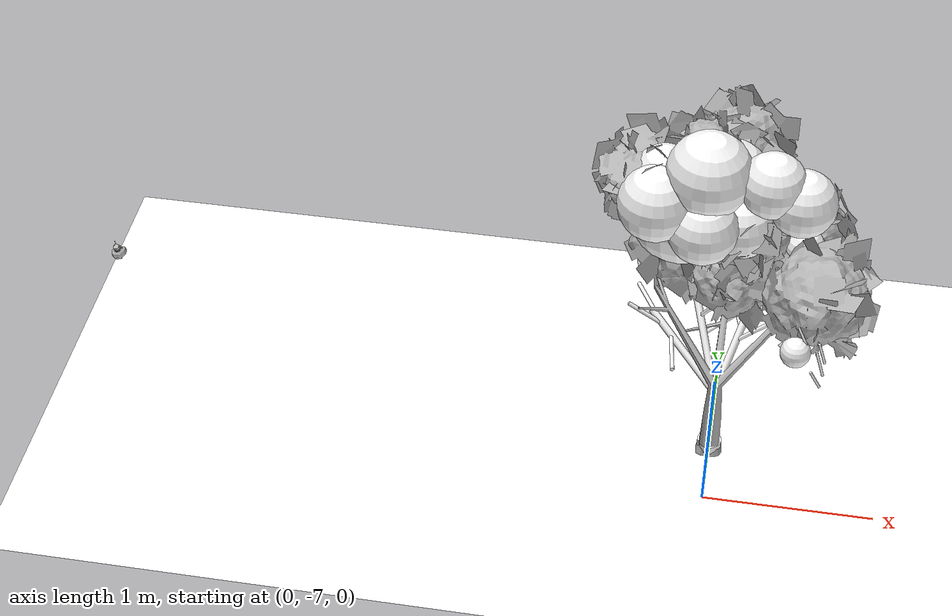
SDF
<sdf version="1.11">
 <world name="peach_orchard">
  <model name="ground">
   <static>true</static>
   <link name="link">
    <visual name="soil">
     <geometry><plane><normal>0 0 1</normal><size>32 22</size></plane></geometry>
     <material>
      <ambient>1 1 1 1</ambient>
      <diffuse>1 1 1 1</diffuse>
      <specular>0.1 0.1 0.1 1</specular>
      <pbr>
       <metal>
        <albedo_map>textures/soil_albedo.png</albedo_map>
        <normal_map type="tangent">textures/soil_normal.png</normal_map>
        <roughness>0.95</roughness>
        <metalness>0</metalness>
       </metal>
      </pbr>
     </material>
    </visual>
    <collision name="c_soil">
     <geometry><plane><normal>0 0 1</normal><size>32 22</size></plane></geometry>
    </collision>
   </link>
  </model>
  <model name="tree_r2_t0">
   <pose>0 -6.6 0 0 0 0</pose>
   <static>true</static>
   <link name="link">
    <visual name="tree_mesh">
     <pose>0 0 0 0 0 -0.0195744</pose>
     <geometry>
      <mesh><uri>model://peach_sim/meshes/peach_tree_a.glb</uri><scale>0.989964 0.989964 0.989964</scale></mesh>
     </geometry>
    </visual>
    <visual name="trunk_0">
     <pose>0 0 0.145284 0 0 0</pose>
     <geometry><cylinder><radius>0.049724</radius><length>0.290567</length></cylinder></geometry>
     <material>
      <ambient>1 1 1 1</ambient>
      <diffuse>1 1 1 1</diffuse>
      <specular>0.1 0.1 0.1 1</specular>
      <pbr>
       <metal>
        <albedo_map>textures/bark_albedo.png</albedo_map>
        <normal_map type="tangent">textures/bark_normal.png</normal_map>
        <roughness>0.9</roughness>
        <metalness>0</metalness>
       </metal>
      </pbr>
     </material>
    </visual>
    <collision name="c_trunk_0">
     <pose>0 0 0.145284 0 0 0</pose>
     <geometry><cylinder><radius>0.049724</radius><length>0.290567</length></cylinder></geometry>
    </collision>
    <visual name="trunk_1">
     <pose>0 0 0.409436 0 0 0</pose>
     <geometry><cylinder><radius>0.0358013</radius><length>0.237737</length></cylinder></geometry>
     <material>
      <ambient>1 1 1 1</ambient>
      <diffuse>1 1 1 1</diffuse>
      <specular>0.1 0.1 0.1 1</specular>
      <pbr>
       <metal>
        <albedo_map>textures/bark_albedo.png</albedo_map>
        <normal_map type="tangent">textures/bark_normal.png</normal_map>
        <roughness>0.9</roughness>
        <metalness>0</metalness>
       </metal>
      </pbr>
     </material>
    </visual>
    <collision name="c_trunk_1">
     <pose>0 0 0.409436 0 0 0</pose>
     <geometry><cylinder><radius>0.0358013</radius><length>0.237737</length></cylinder></geometry>
    </collision>
    <visual name="root_flare">
     <pose>0 0 0.035 0 0 0</pose>
     <geometry><cylinder><radius>0.0720999</radius><length>0.07</length></cylinder></geometry>
     <material>
      <ambient>1 1 1 1</ambient>
      <diffuse>1 1 1 1</diffuse>
      <specular>0.1 0.1 0.1 1</specular>
      <pbr>
       <metal>
        <albedo_map>textures/bark_albedo.png</albedo_map>
        <normal_map type="tangent">textures/bark_normal.png</normal_map>
        <roughness>0.95</roughness>
        <metalness>0</metalness>
       </metal>
      </pbr>
     </material>
    </visual>
    <visual name="scaffold_0">
     <pose>-0.0931049 0.229816 0.691624 0 0.878559 1.95572</pose>
     <geometry><cylinder><radius>0.022</radius><length>0.644201</length></cylinder></geometry>
     <material>
      <ambient>1 1 1 1</ambient>
      <diffuse>1 1 1 1</diffuse>
      <specular>0.1 0.1 0.1 1</specular>
      <pbr>
       <metal>
        <albedo_map>textures/bark_albedo.png</albedo_map>
        <normal_map type="tangent">textures/bark_normal.png</normal_map>
        <roughness>0.9</roughness>
        <metalness>0</metalness>
       </metal>
      </pbr>
     </material>
    </visual>
    <collision name="c_scaffold_0">
     <pose>-0.0931049 0.229816 0.691624 0 0.878559 1.95572</pose>
     <geometry><cylinder><radius>0.022</radius><length>0.644201</length></cylinder></geometry>
    </collision>
    <visual name="branchlet_0_0">
     <pose>-0.0948264 0.562317 0.837658 0 1.64774 1.14382</pose>
     <geometry><cylinder><radius>0.012</radius><length>0.340739</length></cylinder></geometry>
     <material>
      <ambient>1 1 1 1</ambient>
      <diffuse>1 1 1 1</diffuse>
      <specular>0.1 0.1 0.1 1</specular>
      <pbr>
       <metal>
        <albedo_map>textures/bark_albedo.png</albedo_map>
        <normal_map type="tangent">textures/bark_normal.png</normal_map>
        <roughness>0.9</roughness>
        <metalness>0</metalness>
       </metal>
      </pbr>
     </material>
    </visual>
    <visual name="branchlet_0_1">
     <pose>-0.0843501 0.301019 0.866036 0 0.598709 -0.535921</pose>
     <geometry><cylinder><radius>0.012</radius><length>0.204368</length></cylinder></geometry>
     <material>
      <ambient>1 1 1 1</ambient>
      <diffuse>1 1 1 1</diffuse>
      <specular>0.1 0.1 0.1 1</specular>
      <pbr>
       <metal>
        <albedo_map>textures/bark_albedo.png</albedo_map>
        <normal_map type="tangent">textures/bark_normal.png</normal_map>
        <roughness>0.9</roughness>
        <metalness>0</metalness>
       </metal>
      </pbr>
     </material>
    </visual>
    <visual name="branchlet_0_2">
     <pose>0.0159841 0.340766 0.750601 0 1.31927 0.634578</pose>
     <geometry><cylinder><radius>0.012</radius><length>0.304243</length></cylinder></geometry>
     <material>
      <ambient>1 1 1 1</ambient>
      <diffuse>1 1 1 1</diffuse>
      <specular>0.1 0.1 0.1 1</specular>
      <pbr>
       <metal>
        <albedo_map>textures/bark_albedo.png</albedo_map>
        <normal_map type="tangent">textures/bark_normal.png</normal_map>
        <roughness>0.9</roughness>
        <metalness>0</metalness>
       </metal>
      </pbr>
     </material>
    </visual>
    <visual name="scaffold_1">
     <pose>0.0868453 0.217684 0.698224 0 0.835037 1.19119</pose>
     <geometry><cylinder><radius>0.022</radius><length>0.632299</length></cylinder></geometry>
     <material>
      <ambient>1 1 1 1</ambient>
      <diffuse>1 1 1 1</diffuse>
      <specular>0.1 0.1 0.1 1</specular>
      <pbr>
       <metal>
        <albedo_map>textures/bark_albedo.png</albedo_map>
        <normal_map type="tangent">textures/bark_normal.png</normal_map>
        <roughness>0.9</roughness>
        <metalness>0</metalness>
       </metal>
      </pbr>
     </material>
    </visual>
    <collision name="c_scaffold_1">
     <pose>0.0868453 0.217684 0.698224 0 0.835037 1.19119</pose>
     <geometry><cylinder><radius>0.022</radius><length>0.632299</length></cylinder></geometry>
    </collision>
    <visual name="branchlet_1_0">
     <pose>0.0805614 0.441859 0.721227 0 1.81418 1.7704</pose>
     <geometry><cylinder><radius>0.012</radius><length>0.334713</length></cylinder></geometry>
     <material>
      <ambient>1 1 1 1</ambient>
      <diffuse>1 1 1 1</diffuse>
      <specular>0.1 0.1 0.1 1</specular>
      <pbr>
       <metal>
        <albedo_map>textures/bark_albedo.png</albedo_map>
        <normal_map type="tangent">textures/bark_normal.png</normal_map>
        <roughness>0.9</roughness>
        <metalness>0</metalness>
       </metal>
      </pbr>
     </material>
    </visual>
    <visual name="branchlet_1_1">
     <pose>0.151218 0.453773 0.859361 0 1.22073 1.43469</pose>
     <geometry><cylinder><radius>0.012</radius><length>0.24455</length></cylinder></geometry>
     <material>
      <ambient>1 1 1 1</ambient>
      <diffuse>1 1 1 1</diffuse>
      <specular>0.1 0.1 0.1 1</specular>
      <pbr>
       <metal>
        <albedo_map>textures/bark_albedo.png</albedo_map>
        <normal_map type="tangent">textures/bark_normal.png</normal_map>
        <roughness>0.9</roughness>
        <metalness>0</metalness>
       </metal>
      </pbr>
     </material>
    </visual>
    <visual name="branchlet_1_2">
     <pose>0.205345 0.242049 0.803421 0 0.887559 0.102567</pose>
     <geometry><cylinder><radius>0.012</radius><length>0.294086</length></cylinder></geometry>
     <material>
      <ambient>1 1 1 1</ambient>
      <diffuse>1 1 1 1</diffuse>
      <specular>0.1 0.1 0.1 1</specular>
      <pbr>
       <metal>
        <albedo_map>textures/bark_albedo.png</albedo_map>
        <normal_map type="tangent">textures/bark_normal.png</normal_map>
        <roughness>0.9</roughness>
        <metalness>0</metalness>
       </metal>
      </pbr>
     </material>
    </visual>
    <visual name="scaffold_2">
     <pose>-0.210414 0.159839 0.641242 0 1.03973 2.49195</pose>
     <geometry><cylinder><radius>0.022</radius><length>0.612895</length></cylinder></geometry>
     <material>
      <ambient>1 1 1 1</ambient>
      <diffuse>1 1 1 1</diffuse>
      <specular>0.1 0.1 0.1 1</specular>
      <pbr>
       <metal>
        <albedo_map>textures/bark_albedo.png</albedo_map>
        <normal_map type="tangent">textures/bark_normal.png</normal_map>
        <roughness>0.9</roughness>
        <metalness>0</metalness>
       </metal>
      </pbr>
     </material>
    </visual>
    <collision name="c_scaffold_2">
     <pose>-0.210414 0.159839 0.641242 0 1.03973 2.49195</pose>
     <geometry><cylinder><radius>0.022</radius><length>0.612895</length></cylinder></geometry>
    </collision>
    <visual name="branchlet_2_0">
     <pose>-0.443968 0.376214 0.804512 0 1.20462 2.23793</pose>
     <geometry><cylinder><radius>0.012</radius><length>0.264421</length></cylinder></geometry>
     <material>
      <ambient>1 1 1 1</ambient>
      <diffuse>1 1 1 1</diffuse>
      <specular>0.1 0.1 0.1 1</specular>
      <pbr>
       <metal>
        <albedo_map>textures/bark_albedo.png</albedo_map>
        <normal_map type="tangent">textures/bark_normal.png</normal_map>
        <roughness>0.9</roughness>
        <metalness>0</metalness>
       </metal>
      </pbr>
     </material>
    </visual>
    <visual name="branchlet_2_1">
     <pose>-0.273422 0.0754529 0.70636 0 1.53441 -1.44795</pose>
     <geometry><cylinder><radius>0.012</radius><length>0.294287</length></cylinder></geometry>
     <material>
      <ambient>1 1 1 1</ambient>
      <diffuse>1 1 1 1</diffuse>
      <specular>0.1 0.1 0.1 1</specular>
      <pbr>
       <metal>
        <albedo_map>textures/bark_albedo.png</albedo_map>
        <normal_map type="tangent">textures/bark_normal.png</normal_map>
        <roughness>0.9</roughness>
        <metalness>0</metalness>
       </metal>
      </pbr>
     </material>
    </visual>
    <visual name="branchlet_2_2">
     <pose>-0.452103 0.270512 0.803434 0 1.04176 3.06891</pose>
     <geometry><cylinder><radius>0.012</radius><length>0.246627</length></cylinder></geometry>
     <material>
      <ambient>1 1 1 1</ambient>
      <diffuse>1 1 1 1</diffuse>
      <specular>0.1 0.1 0.1 1</specular>
      <pbr>
       <metal>
        <albedo_map>textures/bark_albedo.png</albedo_map>
        <normal_map type="tangent">textures/bark_normal.png</normal_map>
        <roughness>0.9</roughness>
        <metalness>0</metalness>
       </metal>
      </pbr>
     </material>
    </visual>
    <visual name="canopy_0">
     <pose>-0.285487 0.261861 1.66472 0 0 0</pose>
     <geometry><sphere><radius>0.310618</radius></sphere></geometry>
     <material>
      <ambient>1 1 1 1</ambient>
      <diffuse>1 1 1 1</diffuse>
      <specular>0.1 0.1 0.1 1</specular>
      <pbr>
       <metal>
        <albedo_map>textures/leaf_albedo.png</albedo_map>
        <normal_map type="tangent">textures/leaf_normal.png</normal_map>
        <roughness>0.85</roughness>
        <metalness>0</metalness>
       </metal>
      </pbr>
     </material>
    </visual>
    <collision name="c_canopy_0">
     <pose>-0.285487 0.261861 1.66472 0 0 0</pose>
     <geometry><sphere><radius>0.310618</radius></sphere></geometry>
    </collision>
    <visual name="canopy_1">
     <pose>0.357938 -0.00417644 2.02835 0 0 0</pose>
     <geometry><sphere><radius>0.187012</radius></sphere></geometry>
     <material>
      <ambient>1 1 1 1</ambient>
      <diffuse>1 1 1 1</diffuse>
      <specular>0.1 0.1 0.1 1</specular>
      <pbr>
       <metal>
        <albedo_map>textures/leaf_albedo.png</albedo_map>
        <normal_map type="tangent">textures/leaf_normal.png</normal_map>
        <roughness>0.85</roughness>
        <metalness>0</metalness>
       </metal>
      </pbr>
     </material>
    </visual>
    <collision name="c_canopy_1">
     <pose>0.357938 -0.00417644 2.02835 0 0 0</pose>
     <geometry><sphere><radius>0.187012</radius></sphere></geometry>
    </collision>
    <visual name="canopy_2">
     <pose>-0.389778 0.124172 2.00404 0 0 0</pose>
     <geometry><sphere><radius>0.182733</radius></sphere></geometry>
     <material>
      <ambient>1 1 1 1</ambient>
      <diffuse>1 1 1 1</diffuse>
      <specular>0.1 0.1 0.1 1</specular>
      <pbr>
       <metal>
        <albedo_map>textures/leaf_albedo.png</albedo_map>
        <normal_map type="tangent">textures/leaf_normal.png</normal_map>
        <roughness>0.85</roughness>
        <metalness>0</metalness>
       </metal>
      </pbr>
     </material>
    </visual>
    <collision name="c_canopy_2">
     <pose>-0.389778 0.124172 2.00404 0 0 0</pose>
     <geometry><sphere><radius>0.182733</radius></sphere></geometry>
    </collision>
    <visual name="canopy_3">
     <pose>-0.150289 0.0170467 2.14463 0 0 0</pose>
     <geometry><sphere><radius>0.23882</radius></sphere></geometry>
     <material>
      <ambient>1 1 1 1</ambient>
      <diffuse>1 1 1 1</diffuse>
      <specular>0.1 0.1 0.1 1</specular>
      <pbr>
       <metal>
        <albedo_map>textures/leaf_albedo.png</albedo_map>
        <normal_map type="tangent">textures/leaf_normal.png</normal_map>
        <roughness>0.85</roughness>
        <metalness>0</metalness>
       </metal>
      </pbr>
     </material>
    </visual>
    <visual name="canopy_4">
     <pose>0.191104 0.00158978 2.12742 0 0 0</pose>
     <geometry><sphere><radius>0.183613</radius></sphere></geometry>
     <material>
      <ambient>1 1 1 1</ambient>
      <diffuse>1 1 1 1</diffuse>
      <specular>0.1 0.1 0.1 1</specular>
      <pbr>
       <metal>
        <albedo_map>textures/leaf_albedo.png</albedo_map>
        <normal_map type="tangent">textures/leaf_normal.png</normal_map>
        <roughness>0.85</roughness>
        <metalness>0</metalness>
       </metal>
      </pbr>
     </material>
    </visual>
    <visual name="canopy_5">
     <pose>-0.417686 -0.0674513 1.97423 0 0 0</pose>
     <geometry><sphere><radius>0.212263</radius></sphere></geometry>
     <material>
      <ambient>1 1 1 1</ambient>
      <diffuse>1 1 1 1</diffuse>
      <specular>0.1 0.1 0.1 1</specular>
      <pbr>
       <metal>
        <albedo_map>textures/leaf_albedo.png</albedo_map>
        <normal_map type="tangent">textures/leaf_normal.png</normal_map>
        <roughness>0.85</roughness>
        <metalness>0</metalness>
       </metal>
      </pbr>
     </material>
    </visual>
    <visual name="canopy_6">
     <pose>0.0411932 0.0738959 1.76436 0 0 0</pose>
     <geometry><sphere><radius>0.191599</radius></sphere></geometry>
     <material>
      <ambient>1 1 1 1</ambient>
      <diffuse>1 1 1 1</diffuse>
      <specular>0.1 0.1 0.1 1</specular>
      <pbr>
       <metal>
        <albedo_map>textures/leaf_albedo.png</albedo_map>
        <normal_map type="tangent">textures/leaf_normal.png</normal_map>
        <roughness>0.85</roughness>
        <metalness>0</metalness>
       </metal>
      </pbr>
     </material>
    </visual>
    <visual name="canopy_7">
     <pose>-0.0330547 0.426331 1.81028 0 0 0</pose>
     <geometry><sphere><radius>0.203673</radius></sphere></geometry>
     <material>
      <ambient>1 1 1 1</ambient>
      <diffuse>1 1 1 1</diffuse>
      <specular>0.1 0.1 0.1 1</specular>
      <pbr>
       <metal>
        <albedo_map>textures/leaf_albedo.png</albedo_map>
        <normal_map type="tangent">textures/leaf_normal.png</normal_map>
        <roughness>0.85</roughness>
        <metalness>0</metalness>
       </metal>
      </pbr>
     </material>
    </visual>
    <visual name="canopy_8">
     <pose>-0.155446 -0.115126 1.86587 0 0 0</pose>
     <geometry><sphere><radius>0.195328</radius></sphere></geometry>
     <material>
      <ambient>1 1 1 1</ambient>
      <diffuse>1 1 1 1</diffuse>
      <specular>0.1 0.1 0.1 1</specular>
      <pbr>
       <metal>
        <albedo_map>textures/leaf_albedo.png</albedo_map>
        <normal_map type="tangent">textures/leaf_normal.png</normal_map>
        <roughness>0.85</roughness>
        <metalness>0</metalness>
       </metal>
      </pbr>
     </material>
    </visual>
    <visual name="foliage_0">
     <pose>0.409302 -0.459573 1.36727 0 0 0</pose>
     <geometry><sphere><radius>0.08385</radius></sphere></geometry>
     <material>
      <ambient>1 1 1 1</ambient>
      <diffuse>1 1 1 1</diffuse>
      <specular>0.1 0.1 0.1 1</specular>
      <pbr>
       <metal>
        <albedo_map>textures/leaf_albedo.png</albedo_map>
        <normal_map type="tangent">textures/leaf_normal.png</normal_map>
        <roughness>0.85</roughness>
        <metalness>0</metalness>
       </metal>
      </pbr>
     </material>
    </visual>
    <visual name="foliage_4">
     <pose>0.144904 0.414174 1.28725 0 0 0</pose>
     <geometry><sphere><radius>0.0993942</radius></sphere></geometry>
     <material>
      <ambient>1 1 1 1</ambient>
      <diffuse>1 1 1 1</diffuse>
      <specular>0.1 0.1 0.1 1</specular>
      <pbr>
       <metal>
        <albedo_map>textures/leaf_albedo.png</albedo_map>
        <normal_map type="tangent">textures/leaf_normal.png</normal_map>
        <roughness>0.85</roughness>
        <metalness>0</metalness>
       </metal>
      </pbr>
     </material>
    </visual>
    <visual name="foliage_8">
     <pose>0.409923 0.301092 1.44121 0 0 0</pose>
     <geometry><sphere><radius>0.117117</radius></sphere></geometry>
     <material>
      <ambient>1 1 1 1</ambient>
      <diffuse>1 1 1 1</diffuse>
      <specular>0.1 0.1 0.1 1</specular>
      <pbr>
       <metal>
        <albedo_map>textures/leaf_albedo.png</albedo_map>
        <normal_map type="tangent">textures/leaf_normal.png</normal_map>
        <roughness>0.85</roughness>
        <metalness>0</metalness>
       </metal>
      </pbr>
     </material>
    </visual>
    <visual name="twig_0">
     <pose>0.442278 -0.434961 1.45721 0 0.580292 2.59715</pose>
     <geometry><cylinder><radius>0.007</radius><length>0.138235</length></cylinder></geometry>
     <material>
      <ambient>1 1 1 1</ambient>
      <diffuse>1 1 1 1</diffuse>
      <specular>0.1 0.1 0.1 1</specular>
      <pbr>
       <metal>
        <albedo_map>textures/bark_albedo.png</albedo_map>
        <normal_map type="tangent">textures/bark_normal.png</normal_map>
        <roughness>0.9</roughness>
        <metalness>0</metalness>
       </metal>
      </pbr>
     </material>
    </visual>
    <visual name="twig_1">
     <pose>0.540919 -0.613049 1.53579 0 0.290392 -2.95201</pose>
     <geometry><cylinder><radius>0.007</radius><length>0.148345</length></cylinder></geometry>
     <material>
      <ambient>1 1 1 1</ambient>
      <diffuse>1 1 1 1</diffuse>
      <specular>0.1 0.1 0.1 1</specular>
      <pbr>
       <metal>
        <albedo_map>textures/bark_albedo.png</albedo_map>
        <normal_map type="tangent">textures/bark_normal.png</normal_map>
        <roughness>0.9</roughness>
        <metalness>0</metalness>
       </metal>
      </pbr>
     </material>
    </visual>
    <visual name="twig_2">
     <pose>0.527839 -0.740449 1.58989 0 0.455136 2.39963</pose>
     <geometry><cylinder><radius>0.007</radius><length>0.141236</length></cylinder></geometry>
     <material>
      <ambient>1 1 1 1</ambient>
      <diffuse>1 1 1 1</diffuse>
      <specular>0.1 0.1 0.1 1</specular>
      <pbr>
       <metal>
        <albedo_map>textures/bark_albedo.png</albedo_map>
        <normal_map type="tangent">textures/bark_normal.png</normal_map>
        <roughness>0.9</roughness>
        <metalness>0</metalness>
       </metal>
      </pbr>
     </material>
    </visual>
    <visual name="twig_3">
     <pose>0.509937 -0.841181 1.57288 0 0.467653 -2.83137</pose>
     <geometry><cylinder><radius>0.007</radius><length>0.129609</length></cylinder></geometry>
     <material>
      <ambient>1 1 1 1</ambient>
      <diffuse>1 1 1 1</diffuse>
      <specular>0.1 0.1 0.1 1</specular>
      <pbr>
       <metal>
        <albedo_map>textures/bark_albedo.png</albedo_map>
        <normal_map type="tangent">textures/bark_normal.png</normal_map>
        <roughness>0.9</roughness>
        <metalness>0</metalness>
       </metal>
      </pbr>
     </material>
    </visual>
    <visual name="twig_4">
     <pose>0.229831 0.32747 1.441 0 0.150676 2.99344</pose>
     <geometry><cylinder><radius>0.007</radius><length>0.173809</length></cylinder></geometry>
     <material>
      <ambient>1 1 1 1</ambient>
      <diffuse>1 1 1 1</diffuse>
      <specular>0.1 0.1 0.1 1</specular>
      <pbr>
       <metal>
        <albedo_map>textures/bark_albedo.png</albedo_map>
        <normal_map type="tangent">textures/bark_normal.png</normal_map>
        <roughness>0.9</roughness>
        <metalness>0</metalness>
       </metal>
      </pbr>
     </material>
    </visual>
    <visual name="twig_5">
     <pose>0.190272 0.303867 1.37679 0 0.628031 -3.13828</pose>
     <geometry><cylinder><radius>0.007</radius><length>0.103803</length></cylinder></geometry>
     <material>
      <ambient>1 1 1 1</ambient>
      <diffuse>1 1 1 1</diffuse>
      <specular>0.1 0.1 0.1 1</specular>
      <pbr>
       <metal>
        <albedo_map>textures/bark_albedo.png</albedo_map>
        <normal_map type="tangent">textures/bark_normal.png</normal_map>
        <roughness>0.9</roughness>
        <metalness>0</metalness>
       </metal>
      </pbr>
     </material>
    </visual>
    <visual name="twig_6">
     <pose>0.388499 0.273756 1.39551 0 0.664002 3.0131</pose>
     <geometry><cylinder><radius>0.007</radius><length>0.166281</length></cylinder></geometry>
     <material>
      <ambient>1 1 1 1</ambient>
      <diffuse>1 1 1 1</diffuse>
      <specular>0.1 0.1 0.1 1</specular>
      <pbr>
       <metal>
        <albedo_map>textures/bark_albedo.png</albedo_map>
        <normal_map type="tangent">textures/bark_normal.png</normal_map>
        <roughness>0.9</roughness>
        <metalness>0</metalness>
       </metal>
      </pbr>
     </material>
    </visual>
    <visual name="twig_7">
     <pose>0.452665 0.296219 1.38284 0 0.668107 -3.04035</pose>
     <geometry><cylinder><radius>0.007</radius><length>0.121256</length></cylinder></geometry>
     <material>
      <ambient>1 1 1 1</ambient>
      <diffuse>1 1 1 1</diffuse>
      <specular>0.1 0.1 0.1 1</specular>
      <pbr>
       <metal>
        <albedo_map>textures/bark_albedo.png</albedo_map>
        <normal_map type="tangent">textures/bark_normal.png</normal_map>
        <roughness>0.9</roughness>
        <metalness>0</metalness>
       </metal>
      </pbr>
     </material>
    </visual>
    <visual name="twig_8">
     <pose>0.355194 0.381105 1.45285 0 0.733272 -2.84929</pose>
     <geometry><cylinder><radius>0.007</radius><length>0.131492</length></cylinder></geometry>
     <material>
      <ambient>1 1 1 1</ambient>
      <diffuse>1 1 1 1</diffuse>
      <specular>0.1 0.1 0.1 1</specular>
      <pbr>
       <metal>
        <albedo_map>textures/bark_albedo.png</albedo_map>
        <normal_map type="tangent">textures/bark_normal.png</normal_map>
        <roughness>0.9</roughness>
        <metalness>0</metalness>
       </metal>
      </pbr>
     </material>
    </visual>
    <visual name="twig_9">
     <pose>0.350332 0.560621 1.55098 0 0.430305 2.18561</pose>
     <geometry><cylinder><radius>0.007</radius><length>0.176494</length></cylinder></geometry>
     <material>
      <ambient>1 1 1 1</ambient>
      <diffuse>1 1 1 1</diffuse>
      <specular>0.1 0.1 0.1 1</specular>
      <pbr>
       <metal>
        <albedo_map>textures/bark_albedo.png</albedo_map>
        <normal_map type="tangent">textures/bark_normal.png</normal_map>
        <roughness>0.9</roughness>
        <metalness>0</metalness>
       </metal>
      </pbr>
     </material>
    </visual>
    <visual name="twig_10">
     <pose>0.3084 0.545844 1.55352 0 0.591354 -2.56295</pose>
     <geometry><cylinder><radius>0.007</radius><length>0.203381</length></cylinder></geometry>
     <material>
      <ambient>1 1 1 1</ambient>
      <diffuse>1 1 1 1</diffuse>
      <specular>0.1 0.1 0.1 1</specular>
      <pbr>
       <metal>
        <albedo_map>textures/bark_albedo.png</albedo_map>
        <normal_map type="tangent">textures/bark_normal.png</normal_map>
        <roughness>0.9</roughness>
        <metalness>0</metalness>
       </metal>
      </pbr>
     </material>
    </visual>
    <visual name="twig_11">
     <pose>0.269694 0.767179 1.58782 0 0.586281 -2.88146</pose>
     <geometry><cylinder><radius>0.007</radius><length>0.139942</length></cylinder></geometry>
     <material>
      <ambient>1 1 1 1</ambient>
      <diffuse>1 1 1 1</diffuse>
      <specular>0.1 0.1 0.1 1</specular>
      <pbr>
       <metal>
        <albedo_map>textures/bark_albedo.png</albedo_map>
        <normal_map type="tangent">textures/bark_normal.png</normal_map>
        <roughness>0.9</roughness>
        <metalness>0</metalness>
       </metal>
      </pbr>
     </material>
    </visual>
   </link>
  </model>
  <model name="peach_tree_r1_t0_05">
   <pose>-3.45 -6.82776 1.2764 0 0.184871 -1.77541</pose>
   <static>true</static>
   <link name="bag">
    <visual name="bag_mesh">
     <pose>0 0 0.0406989 0 0 -0</pose>
     <geometry>
      <mesh><uri>model://peach_sim/meshes/bagged_peach.glb</uri><scale>0.97336 1.1443 0.924974</scale></mesh>
     </geometry>
    </visual>
    <visual name="body">
     <pose>0 0 0.0226989 0 0 0</pose>
     <geometry><ellipsoid><radii>0.036501 0.0297519 0.0245148</radii></ellipsoid></geometry>
     <material>
      <ambient>1 1 1 1</ambient>
      <diffuse>1 1 1 1</diffuse>
      <specular>0.1 0.1 0.1 1</specular>
      <pbr>
       <metal>
        <albedo_map>textures/paper_bag_albedo.png</albedo_map>
        <normal_map type="tangent">textures/paper_bag_normal.png</normal_map>
        <roughness>0.72</roughness>
        <metalness>0</metalness>
       </metal>
      </pbr>
     </material>
    </visual>
    <visual name="bottom_fold">
     <pose>0 0 0.012 0 0 0.35</pose>
     <geometry><box><size>0.0565766 0.0342147 0.022</size></box></geometry>
     <material>
      <ambient>1 1 1 1</ambient>
      <diffuse>1 1 1 1</diffuse>
      <specular>0.1 0.1 0.1 1</specular>
      <pbr>
       <metal>
        <albedo_map>textures/paper_bag_albedo.png</albedo_map>
        <normal_map type="tangent">textures/paper_bag_normal.png</normal_map>
        <roughness>0.8</roughness>
        <metalness>0</metalness>
       </metal>
      </pbr>
     </material>
    </visual>
    <visual name="fruit">
     <pose>0 0 0.0212417 0 0 0</pose>
     <geometry><sphere><radius>0.0283314</radius></sphere></geometry>
     <material>
      <ambient>1 1 1 1</ambient>
      <diffuse>1 1 1 1</diffuse>
      <specular>0.1 0.1 0.1 1</specular>
      <pbr>
       <metal>
        <albedo_map>textures/fruit_skin_albedo.png</albedo_map>
        <normal_map type="tangent">textures/fruit_skin_normal.png</normal_map>
        <roughness>0.55</roughness>
        <metalness>0</metalness>
       </metal>
      </pbr>
     </material>
    </visual>
    <visual name="neck">
     <pose>0 0 0.0543977 0 0 0</pose>
     <geometry><cylinder><radius>0.013</radius><length>0.018</length></cylinder></geometry>
     <material>
      <ambient>1 1 1 1</ambient>
      <diffuse>1 1 1 1</diffuse>
      <specular>0.1 0.1 0.1 1</specular>
      <pbr>
       <metal>
        <albedo_map>textures/paper_bag_albedo.png</albedo_map>
        <normal_map type="tangent">textures/paper_bag_normal.png</normal_map>
        <roughness>0.75</roughness>
        <metalness>0</metalness>
       </metal>
      </pbr>
     </material>
    </visual>
    <visual name="gather">
     <pose>0 0 0.0353977 0 0 0</pose>
     <geometry><cylinder><radius>0.019</radius><length>0.02</length></cylinder></geometry>
     <material>
      <ambient>1 1 1 1</ambient>
      <diffuse>1 1 1 1</diffuse>
      <specular>0.1 0.1 0.1 1</specular>
      <pbr>
       <metal>
        <albedo_map>textures/paper_bag_albedo.png</albedo_map>
        <normal_map type="tangent">textures/paper_bag_normal.png</normal_map>
        <roughness>0.8</roughness>
        <metalness>0</metalness>
       </metal>
      </pbr>
     </material>
    </visual>
    <visual name="inner_paper">
     <pose>0 0 0.0593977 0 0 0</pose>
     <geometry><cylinder><radius>0.01</radius><length>0.008</length></cylinder></geometry>
     <material>
      <ambient>0.180392 0.14902 0.133333 1</ambient>
      <diffuse>0.180392 0.14902 0.133333 1</diffuse>
      <specular>0.1 0.1 0.1 1</specular>
     </material>
    </visual>
    <visual name="wire_0">
     <pose>0 0 0.0493977 0 0 0</pose>
     <geometry><cylinder><radius>0.0205</radius><length>0.0035</length></cylinder></geometry>
     <material>
      <ambient>0.25 0.25 0.25 1</ambient>
      <diffuse>0.25 0.25 0.25 1</diffuse>
      <specular>0.1 0.1 0.1 1</specular>
     </material>
    </visual>
    <visual name="wire_1">
     <pose>0 0 0.0563977 0 0 0</pose>
     <geometry><cylinder><radius>0.0205</radius><length>0.0035</length></cylinder></geometry>
     <material>
      <ambient>0.25 0.25 0.25 1</ambient>
      <diffuse>0.25 0.25 0.25 1</diffuse>
      <specular>0.1 0.1 0.1 1</specular>
     </material>
    </visual>
    <visual name="wire_tail">
     <pose>0.01 0 0.0573977 0 0.521618 0</pose>
     <geometry><cylinder><radius>0.0012</radius><length>0.026</length></cylinder></geometry>
     <material>
      <ambient>0.25 0.25 0.25 1</ambient>
      <diffuse>0.25 0.25 0.25 1</diffuse>
      <specular>0.1 0.1 0.1 1</specular>
     </material>
    </visual>
    <collision name="c_body">
     <pose>0 0 0.0226989 0 0 0</pose>
     <geometry><cylinder><radius>0.036501</radius><length>0.0453977</length></cylinder></geometry>
    </collision>
   </link>
  </model>
 </world>
</sdf>
